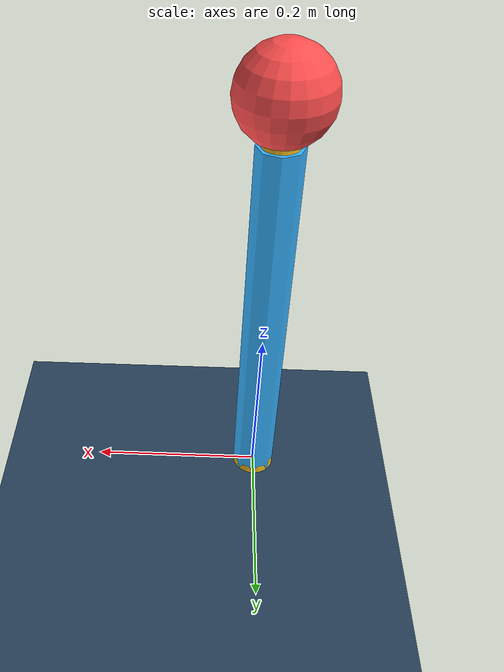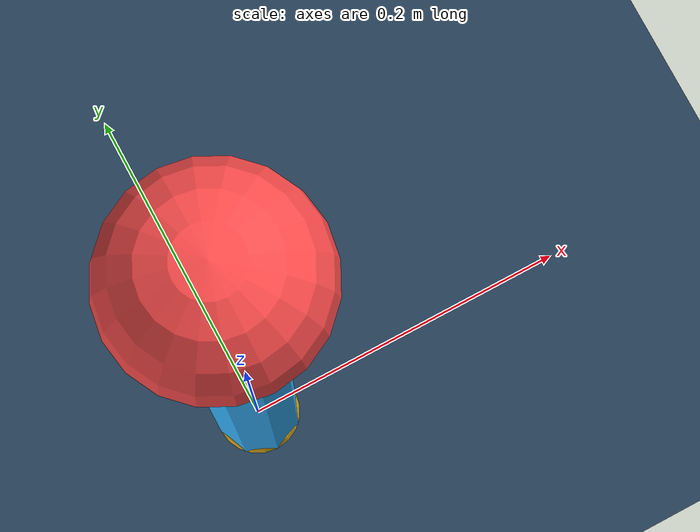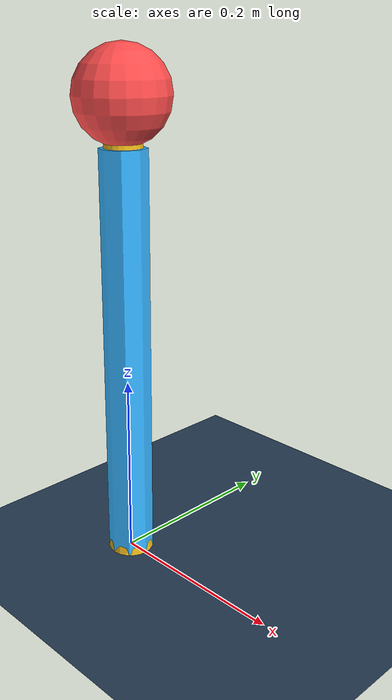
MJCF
<!--
  1D SLIP 跳跃器 MJCF（仅可视化用，物理由 cartPoleDynamics 驱动）
    - slide 关节沿 z 轴控制质心高度 x
    - tendon "spring" 连接地面锚点(foot) 与 质心底部(top)，自动跟随 x 变化
    - 物理参数（kp/kd/m/l）见 sli_1d_model 的 Params；本文件不参与物理积分
-->
<mujoco model="slip_1d">
  <option gravity="0 0 -9.81" timestep="0.001"/>

  <visual>
    <headlight diffuse="0.6 0.6 0.6" ambient="0.4 0.4 0.4" specular="0.2 0.2 0.2"/>
    <rgba haze="0.15 0.25 0.35 1"/>
  </visual>

  <asset>
    <texture type="skybox" builtin="gradient" rgb1="0.3 0.5 0.7" rgb2="0 0 0"
             width="512" height="512"/>
    <texture name="grid" type="2d" builtin="checker" rgb1="0.1 0.2 0.3"
             rgb2="0.2 0.3 0.4" width="300" height="300" mark="edge" markrgb=".2 .3 .4"/>
    <material name="grid" texture="grid" texrepeat="2 2" texuniform="true"
              reflectance="0.2"/>
  </asset>

  <worldbody>
    <geom name="floor" type="plane" size="2 2 0.05" material="grid"/>

    <!-- 质心球 -->
    <body name="hopper" pos="0 0 0.5">
      <joint name="z" type="slide" axis="0 0 1" damping="0"/>
      <geom name="ball" type="sphere" size="0.05" mass="1.0"
            rgba="1.0 0.3 0.3 1"/>
      <site name="top" pos="0 0 -0.05" size="0.02" rgba="0.9 0.7 0.1 1"/>
    </body>

    <!-- 脚：第二个 body，沿 z 滑动；初始放在地面 -->
    <body name="foot_body" pos="0 0 0">
      <joint name="z_foot" type="slide" axis="0 0 1" damping="0"
             limited="false"/>
      <geom name="foot_geom" type="sphere" size="0.025"
            rgba="0.9 0.7 0.1 1" mass="0.001"/>
      <site name="foot" pos="0 0 0" size="0.025" rgba="0.9 0.7 0.1 1"/>
    </body>
  </worldbody>

  <!-- 可视化弹簧（一段 spatial tendon，宽度固定，长度跟随两 site 距离） -->
  <tendon>
    <spatial name="spring" width="0.025" rgba="0.2 0.7 1.0 1">
      <site site="foot"/>
      <site site="top"/>
    </spatial>
  </tendon>

  <actuator>
    <motor name="u" joint="z" gear="1" ctrllimited="true" ctrlrange="-50 50"/>
  </actuator>
</mujoco>
